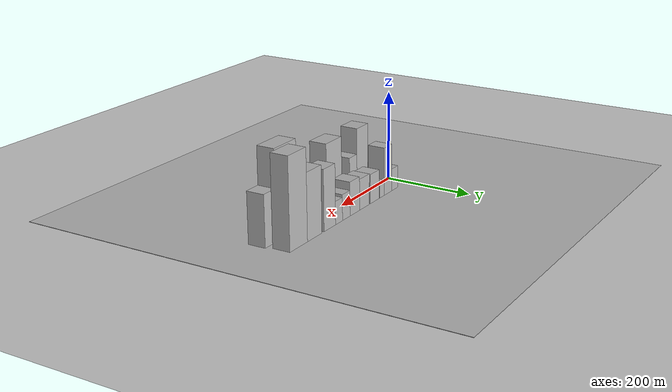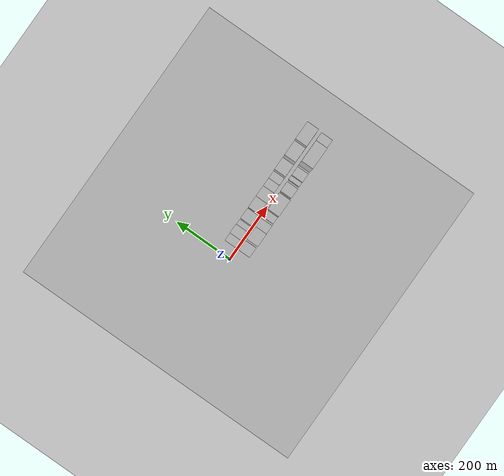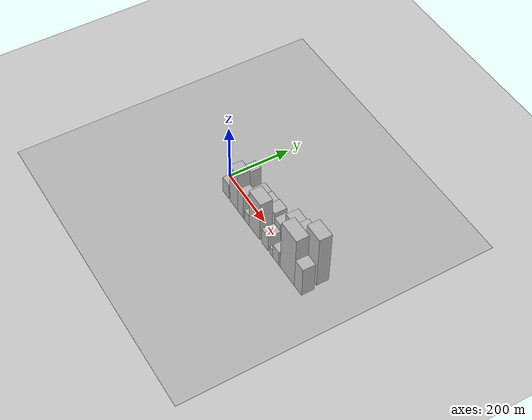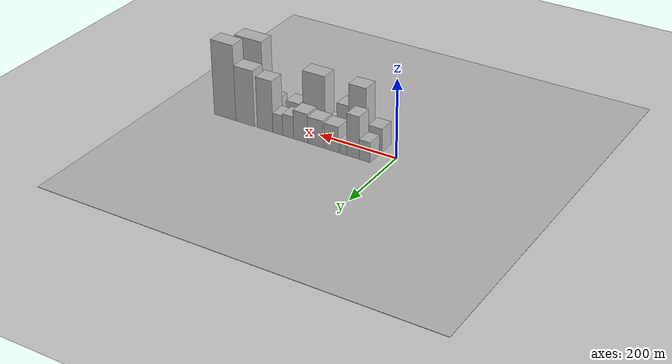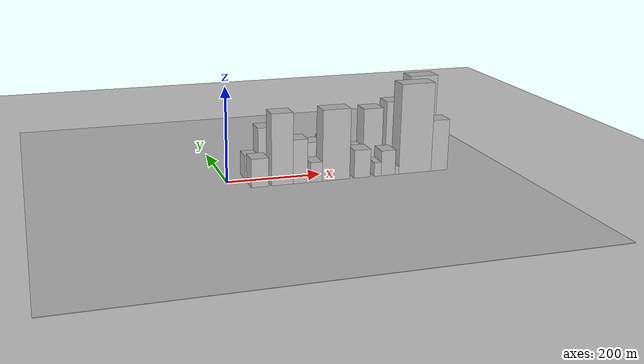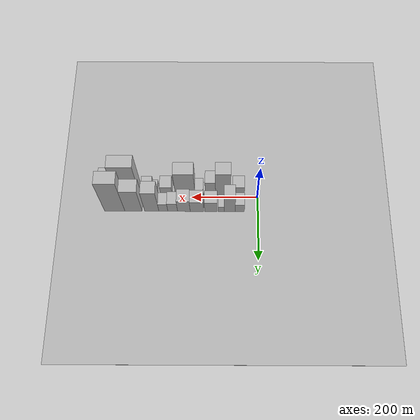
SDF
<?xml version="1.0" encoding="utf-8"?>

<sdf version="1.6">

   <world name="default">

      <gui fullscreen="0">

         <camera name="user_camera">

            <pose>-15 0 4.57585 0 0 0</pose>

            <view_controller>orbit</view_controller>

         </camera>

      </gui>

      <scene>

         <sky>

           <clouds>

             <speed>12</speed>

           </clouds>

         </sky>

         <ambient>0.4 0.4 0.4 1</ambient>

         <background>0.7 0.7 0.7 1</background>

         <shadows>1</shadows>

      </scene>

      <gravity>0 0 -9.8066</gravity>

      <magnetic_field>6e-06 2.3e-05 -4.2e-05</magnetic_field>

      <physics default="0" name="default_physics" type="ode">

         <ode>

            <solver>

               <type>quick</type>

               <iters>10</iters>

               <sor>1.0</sor>

               <use_dynamic_moi_rescaling>0</use_dynamic_moi_rescaling>

            </solver>

            <constraints>

               <cfm>0</cfm>

               <erp>0.2</erp>

               <contact_max_correcting_vel>100</contact_max_correcting_vel>

               <contact_surface_layer>0.001</contact_surface_layer>

            </constraints>

         </ode>

         <max_step_size>0.004</max_step_size>

         <real_time_factor>1</real_time_factor>

         <real_time_update_rate>250</real_time_update_rate>

      </physics>

      <light name="sun" type="directional">

         <cast_shadows>1</cast_shadows>

         <pose>0 0 10 0 0 0</pose>

         <diffuse>0.8 0.8 0.8 1</diffuse>

         <specular>0.2 0.2 0.2 1</specular>

         <attenuation>

            <range>1000</range>

            <constant>0.9</constant>

            <linear>0.01</linear>

            <quadratic>0.001</quadratic>

         </attenuation>

         <direction>-0.5 0.1 -0.9</direction>

      </light>

      <include>

         <name>ground_plane_1</name>

         <uri>model://HANNAS_ground_plane</uri>

         <pose>0 0 0  0 0 0</pose>

      </include>

      <include>

         <name>ground_plane_2</name>

         <uri>model://HANNAS_ground_plane</uri>

         <pose>100 0 0  0 0 0</pose>

      </include>

      <model name="building_1">

         <static>1</static>

         <pose frame="">53.9610 26.0000 0 0.000000 0.000000 1.570796</pose>

         <link name="link">

            <pose frame="">0 0 25.50 0 0 0</pose>

            <collision name="collision">

               <geometry>

                  <box>

                     <size>40.0000 27.9219 51.0000</size>

                  </box>

               </geometry>

               <max_contacts>10</max_contacts>

               <surface>

                  <contact>

                     <ode/>

                  </contact>

                  <bounce/>

                  <friction>

                     <torsional>

                        <ode/>

                     </torsional>

                     <ode/>

                  </friction>

               </surface>

            </collision>

            <visual name="visual">

               <cast_shadows>0</cast_shadows>

               <geometry>

                  <box>

                     <size>40.0000 27.9219 51.0000</size>

                  </box>

               </geometry>

               <material>

                  <script>

                     <uri>model://HANNAS_wall/materials/scripts</uri>

                     <uri>model://HANNAS_wall/materials/textures</uri>

                     <name>vrc/HANNAS_wall</name>

                  </script>

               </material>

            </visual>

            <self_collide>0</self_collide>

            <enable_wind>0</enable_wind>

            <kinematic>0</kinematic>

         </link>

      </model>

      <model name="building_2">

         <static>1</static>

         <pose frame="">84.1409 26.0000 0 0.000000 0.000000 1.570796</pose>

         <link name="link">

            <pose frame="">0 0 54.00 0 0 0</pose>

            <collision name="collision">

               <geometry>

                  <box>

                     <size>40.0000 32.4379 108.0000</size>

                  </box>

               </geometry>

               <max_contacts>10</max_contacts>

               <surface>

                  <contact>

                     <ode/>

                  </contact>

                  <bounce/>

                  <friction>

                     <torsional>

                        <ode/>

                     </torsional>

                     <ode/>

                  </friction>

               </surface>

            </collision>

            <visual name="visual">

               <cast_shadows>0</cast_shadows>

               <geometry>

                  <box>

                     <size>40.0000 32.4379 108.0000</size>

                  </box>

               </geometry>

               <material>

                  <script>

                     <uri>model://HANNAS_wall/materials/scripts</uri>

                     <uri>model://HANNAS_wall/materials/textures</uri>

                     <name>vrc/HANNAS_wall</name>

                  </script>

               </material>

            </visual>

            <self_collide>0</self_collide>

            <enable_wind>0</enable_wind>

            <kinematic>0</kinematic>

         </link>

      </model>

      <model name="building_3">

         <static>1</static>

         <pose frame="">109.6904 26.0000 0 0.000000 0.000000 1.570796</pose>

         <link name="link">

            <pose frame="">0 0 18.00 0 0 0</pose>

            <collision name="collision">

               <geometry>

                  <box>

                     <size>40.0000 18.6612 36.0000</size>

                  </box>

               </geometry>

               <max_contacts>10</max_contacts>

               <surface>

                  <contact>

                     <ode/>

                  </contact>

                  <bounce/>

                  <friction>

                     <torsional>

                        <ode/>

                     </torsional>

                     <ode/>

                  </friction>

               </surface>

            </collision>

            <visual name="visual">

               <cast_shadows>0</cast_shadows>

               <geometry>

                  <box>

                     <size>40.0000 18.6612 36.0000</size>

                  </box>

               </geometry>

               <material>

                  <script>

                     <uri>model://HANNAS_wall/materials/scripts</uri>

                     <uri>model://HANNAS_wall/materials/textures</uri>

                     <name>vrc/HANNAS_wall</name>

                  </script>

               </material>

            </visual>

            <self_collide>0</self_collide>

            <enable_wind>0</enable_wind>

            <kinematic>0</kinematic>

         </link>

      </model>

      <model name="building_4">

         <static>1</static>

         <pose frame="">140.9340 26.0000 0 0.000000 0.000000 1.570796</pose>

         <link name="link">

            <pose frame="">0 0 33.00 0 0 0</pose>

            <collision name="collision">

               <geometry>

                  <box>

                     <size>40.0000 37.8259 66.0000</size>

                  </box>

               </geometry>

               <max_contacts>10</max_contacts>

               <surface>

                  <contact>

                     <ode/>

                  </contact>

                  <bounce/>

                  <friction>

                     <torsional>

                        <ode/>

                     </torsional>

                     <ode/>

                  </friction>

               </surface>

            </collision>

            <visual name="visual">

               <cast_shadows>0</cast_shadows>

               <geometry>

                  <box>

                     <size>40.0000 37.8259 66.0000</size>

                  </box>

               </geometry>

               <material>

                  <script>

                     <uri>model://HANNAS_wall/materials/scripts</uri>

                     <uri>model://HANNAS_wall/materials/textures</uri>

                     <name>vrc/HANNAS_wall</name>

                  </script>

               </material>

            </visual>

            <self_collide>0</self_collide>

            <enable_wind>0</enable_wind>

            <kinematic>0</kinematic>

         </link>

      </model>

      <model name="building_5">

         <static>1</static>

         <pose frame="">183.2874 26.0000 0 0.000000 0.000000 1.570796</pose>

         <link name="link">

            <pose frame="">0 0 34.50 0 0 0</pose>

            <collision name="collision">

               <geometry>

                  <box>

                     <size>40.0000 40.8809 69.0000</size>

                  </box>

               </geometry>

               <max_contacts>10</max_contacts>

               <surface>

                  <contact>

                     <ode/>

                  </contact>

                  <bounce/>

                  <friction>

                     <torsional>

                        <ode/>

                     </torsional>

                     <ode/>

                  </friction>

               </surface>

            </collision>

            <visual name="visual">

               <cast_shadows>0</cast_shadows>

               <geometry>

                  <box>

                     <size>40.0000 40.8809 69.0000</size>

                  </box>

               </geometry>

               <material>

                  <script>

                     <uri>model://HANNAS_wall/materials/scripts</uri>

                     <uri>model://HANNAS_wall/materials/textures</uri>

                     <name>vrc/HANNAS_wall</name>

                  </script>

               </material>

            </visual>

            <self_collide>0</self_collide>

            <enable_wind>0</enable_wind>

            <kinematic>0</kinematic>

         </link>

      </model>

      <model name="building_6">

         <static>1</static>

         <pose frame="">222.8308 26.0000 0 0.000000 0.000000 1.570796</pose>

         <link name="link">

            <pose frame="">0 0 37.50 0 0 0</pose>

            <collision name="collision">

               <geometry>

                  <box>

                     <size>40.0000 38.2059 75.0000</size>

                  </box>

               </geometry>

               <max_contacts>10</max_contacts>

               <surface>

                  <contact>

                     <ode/>

                  </contact>

                  <bounce/>

                  <friction>

                     <torsional>

                        <ode/>

                     </torsional>

                     <ode/>

                  </friction>

               </surface>

            </collision>

            <visual name="visual">

               <cast_shadows>0</cast_shadows>

               <geometry>

                  <box>

                     <size>40.0000 38.2059 75.0000</size>

                  </box>

               </geometry>

               <material>

                  <script>

                     <uri>model://HANNAS_wall/materials/scripts</uri>

                     <uri>model://HANNAS_wall/materials/textures</uri>

                     <name>vrc/HANNAS_wall</name>

                  </script>

               </material>

            </visual>

            <self_collide>0</self_collide>

            <enable_wind>0</enable_wind>

            <kinematic>0</kinematic>

         </link>

      </model>

      <model name="building_7">

         <static>1</static>

         <pose frame="">256.6261 26.0000 0 0.000000 0.000000 1.570796</pose>

         <link name="link">

            <pose frame="">0 0 28.50 0 0 0</pose>

            <collision name="collision">

               <geometry>

                  <box>

                     <size>40.0000 29.3845 57.0000</size>

                  </box>

               </geometry>

               <max_contacts>10</max_contacts>

               <surface>

                  <contact>

                     <ode/>

                  </contact>

                  <bounce/>

                  <friction>

                     <torsional>

                        <ode/>

                     </torsional>

                     <ode/>

                  </friction>

               </surface>

            </collision>

            <visual name="visual">

               <cast_shadows>0</cast_shadows>

               <geometry>

                  <box>

                     <size>40.0000 29.3845 57.0000</size>

                  </box>

               </geometry>

               <material>

                  <script>

                     <uri>model://HANNAS_wall/materials/scripts</uri>

                     <uri>model://HANNAS_wall/materials/textures</uri>

                     <name>vrc/HANNAS_wall</name>

                  </script>

               </material>

            </visual>

            <self_collide>0</self_collide>

            <enable_wind>0</enable_wind>

            <kinematic>0</kinematic>

         </link>

      </model>

      <model name="building_8">

         <static>1</static>

         <pose frame="">284.8140 26.0000 0 0.000000 0.000000 1.570796</pose>

         <link name="link">

            <pose frame="">0 0 25.50 0 0 0</pose>

            <collision name="collision">

               <geometry>

                  <box>

                     <size>40.0000 26.9914 51.0000</size>

                  </box>

               </geometry>

               <max_contacts>10</max_contacts>

               <surface>

                  <contact>

                     <ode/>

                  </contact>

                  <bounce/>

                  <friction>

                     <torsional>

                        <ode/>

                     </torsional>

                     <ode/>

                  </friction>

               </surface>

            </collision>

            <visual name="visual">

               <cast_shadows>0</cast_shadows>

               <geometry>

                  <box>

                     <size>40.0000 26.9914 51.0000</size>

                  </box>

               </geometry>

               <material>

                  <script>

                     <uri>model://HANNAS_wall/materials/scripts</uri>

                     <uri>model://HANNAS_wall/materials/textures</uri>

                     <name>vrc/HANNAS_wall</name>

                  </script>

               </material>

            </visual>

            <self_collide>0</self_collide>

            <enable_wind>0</enable_wind>

            <kinematic>0</kinematic>

         </link>

      </model>

      <model name="building_9">

         <static>1</static>

         <pose frame="">319.8111 26.0000 0 0.000000 0.000000 1.570796</pose>

         <link name="link">

            <pose frame="">0 0 66.00 0 0 0</pose>

            <collision name="collision">

               <geometry>

                  <box>

                     <size>40.0000 43.0029 132.0000</size>

                  </box>

               </geometry>

               <max_contacts>10</max_contacts>

               <surface>

                  <contact>

                     <ode/>

                  </contact>

                  <bounce/>

                  <friction>

                     <torsional>

                        <ode/>

                     </torsional>

                     <ode/>

                  </friction>

               </surface>

            </collision>

            <visual name="visual">

               <cast_shadows>0</cast_shadows>

               <geometry>

                  <box>

                     <size>40.0000 43.0029 132.0000</size>

                  </box>

               </geometry>

               <material>

                  <script>

                     <uri>model://HANNAS_wall/materials/scripts</uri>

                     <uri>model://HANNAS_wall/materials/textures</uri>

                     <name>vrc/HANNAS_wall</name>

                  </script>

               </material>

            </visual>

            <self_collide>0</self_collide>

            <enable_wind>0</enable_wind>

            <kinematic>0</kinematic>

         </link>

      </model>

      <model name="building_10">

         <static>1</static>

         <pose frame="">375.3507 26.0000 0 0.000000 0.000000 1.570796</pose>

         <link name="link">

            <pose frame="">0 0 72.00 0 0 0</pose>

            <collision name="collision">

               <geometry>

                  <box>

                     <size>40.0000 52.0764 144.0000</size>

                  </box>

               </geometry>

               <max_contacts>10</max_contacts>

               <surface>

                  <contact>

                     <ode/>

                  </contact>

                  <bounce/>

                  <friction>

                     <torsional>

                        <ode/>

                     </torsional>

                     <ode/>

                  </friction>

               </surface>

            </collision>

            <visual name="visual">

               <cast_shadows>0</cast_shadows>

               <geometry>

                  <box>

                     <size>40.0000 52.0764 144.0000</size>

                  </box>

               </geometry>

               <material>

                  <script>

                     <uri>model://HANNAS_wall/materials/scripts</uri>

                     <uri>model://HANNAS_wall/materials/textures</uri>

                     <name>vrc/HANNAS_wall</name>

                  </script>

               </material>

            </visual>

            <self_collide>0</self_collide>

            <enable_wind>0</enable_wind>

            <kinematic>0</kinematic>

         </link>

      </model>

      <model name="building_11">

         <static>1</static>

         <pose frame="">432.0049 26.0000 0 0.000000 0.000000 1.570796</pose>

         <link name="link">

            <pose frame="">0 0 97.50 0 0 0</pose>

            <collision name="collision">

               <geometry>

                  <box>

                     <size>40.0000 61.2319 195.0000</size>

                  </box>

               </geometry>

               <max_contacts>10</max_contacts>

               <surface>

                  <contact>

                     <ode/>

                  </contact>

                  <bounce/>

                  <friction>

                     <torsional>

                        <ode/>

                     </torsional>

                     <ode/>

                  </friction>

               </surface>

            </collision>

            <visual name="visual">

               <cast_shadows>0</cast_shadows>

               <geometry>

                  <box>

                     <size>40.0000 61.2319 195.0000</size>

                  </box>

               </geometry>

               <material>

                  <script>

                     <uri>model://HANNAS_wall/materials/scripts</uri>

                     <uri>model://HANNAS_wall/materials/textures</uri>

                     <name>vrc/HANNAS_wall</name>

                  </script>

               </material>

            </visual>

            <self_collide>0</self_collide>

            <enable_wind>0</enable_wind>

            <kinematic>0</kinematic>

         </link>

      </model>

      <model name="building_12">

         <static>1</static>

         <pose frame="">57.8651 -26.0000 0 0.000000 0.000000 1.570796</pose>

         <link name="link">

            <pose frame="">0 0 30.00 0 0 0</pose>

            <collision name="collision">

               <geometry>

                  <box>

                     <size>40.0000 35.7302 60.0000</size>

                  </box>

               </geometry>

               <max_contacts>10</max_contacts>

               <surface>

                  <contact>

                     <ode/>

                  </contact>

                  <bounce/>

                  <friction>

                     <torsional>

                        <ode/>

                     </torsional>

                     <ode/>

                  </friction>

               </surface>

            </collision>

            <visual name="visual">

               <cast_shadows>0</cast_shadows>

               <geometry>

                  <box>

                     <size>40.0000 35.7302 60.0000</size>

                  </box>

               </geometry>

               <material>

                  <script>

                     <uri>model://HANNAS_wall/materials/scripts</uri>

                     <uri>model://HANNAS_wall/materials/textures</uri>

                     <name>vrc/HANNAS_wall</name>

                  </script>

               </material>

            </visual>

            <self_collide>0</self_collide>

            <enable_wind>0</enable_wind>

            <kinematic>0</kinematic>

         </link>

      </model>

      <model name="building_13">

         <static>1</static>

         <pose frame="">104.4608 -26.0000 0 0.000000 0.000000 1.570796</pose>

         <link name="link">

            <pose frame="">0 0 75.00 0 0 0</pose>

            <collision name="collision">

               <geometry>

                  <box>

                     <size>40.0000 45.4612 150.0000</size>

                  </box>

               </geometry>

               <max_contacts>10</max_contacts>

               <surface>

                  <contact>

                     <ode/>

                  </contact>

                  <bounce/>

                  <friction>

                     <torsional>

                        <ode/>

                     </torsional>

                     <ode/>

                  </friction>

               </surface>

            </collision>

            <visual name="visual">

               <cast_shadows>0</cast_shadows>

               <geometry>

                  <box>

                     <size>40.0000 45.4612 150.0000</size>

                  </box>

               </geometry>

               <material>

                  <script>

                     <uri>model://HANNAS_wall/materials/scripts</uri>

                     <uri>model://HANNAS_wall/materials/textures</uri>

                     <name>vrc/HANNAS_wall</name>

                  </script>

               </material>

            </visual>

            <self_collide>0</self_collide>

            <enable_wind>0</enable_wind>

            <kinematic>0</kinematic>

         </link>

      </model>

      <model name="building_14">

         <static>1</static>

         <pose frame="">142.5505 -26.0000 0 0.000000 0.000000 1.570796</pose>

         <link name="link">

            <pose frame="">0 0 46.50 0 0 0</pose>

            <collision name="collision">

               <geometry>

                  <box>

                     <size>40.0000 30.7182 93.0000</size>

                  </box>

               </geometry>

               <max_contacts>10</max_contacts>

               <surface>

                  <contact>

                     <ode/>

                  </contact>

                  <bounce/>

                  <friction>

                     <torsional>

                        <ode/>

                     </torsional>

                     <ode/>

                  </friction>

               </surface>

            </collision>

            <visual name="visual">

               <cast_shadows>0</cast_shadows>

               <geometry>

                  <box>

                     <size>40.0000 30.7182 93.0000</size>

                  </box>

               </geometry>

               <material>

                  <script>

                     <uri>model://HANNAS_wall/materials/scripts</uri>

                     <uri>model://HANNAS_wall/materials/textures</uri>

                     <name>vrc/HANNAS_wall</name>

                  </script>

               </material>

            </visual>

            <self_collide>0</self_collide>

            <enable_wind>0</enable_wind>

            <kinematic>0</kinematic>

         </link>

      </model>

      <model name="building_15">

         <static>1</static>

         <pose frame="">161.4227 -26.0000 0 0.000000 0.000000 1.570796</pose>

         <link name="link">

            <pose frame="">0 0 7.50 0 0 0</pose>

            <collision name="collision">

               <geometry>

                  <box>

                     <size>40.0000 7.0263 15.0000</size>

                  </box>

               </geometry>

               <max_contacts>10</max_contacts>

               <surface>

                  <contact>

                     <ode/>

                  </contact>

                  <bounce/>

                  <friction>

                     <torsional>

                        <ode/>

                     </torsional>

                     <ode/>

                  </friction>

               </surface>

            </collision>

            <visual name="visual">

               <cast_shadows>0</cast_shadows>

               <geometry>

                  <box>

                     <size>40.0000 7.0263 15.0000</size>

                  </box>

               </geometry>

               <material>

                  <script>

                     <uri>model://HANNAS_wall/materials/scripts</uri>

                     <uri>model://HANNAS_wall/materials/textures</uri>

                     <name>vrc/HANNAS_wall</name>

                  </script>

               </material>

            </visual>

            <self_collide>0</self_collide>

            <enable_wind>0</enable_wind>

            <kinematic>0</kinematic>

         </link>

      </model>

      <model name="building_16">

         <static>1</static>

         <pose frame="">177.3652 -26.0000 0 0.000000 0.000000 1.570796</pose>

         <link name="link">

            <pose frame="">0 0 21.00 0 0 0</pose>

            <collision name="collision">

               <geometry>

                  <box>

                     <size>40.0000 24.8586 42.0000</size>

                  </box>

               </geometry>

               <max_contacts>10</max_contacts>

               <surface>

                  <contact>

                     <ode/>

                  </contact>

                  <bounce/>

                  <friction>

                     <torsional>

                        <ode/>

                     </torsional>

                     <ode/>

                  </friction>

               </surface>

            </collision>

            <visual name="visual">

               <cast_shadows>0</cast_shadows>

               <geometry>

                  <box>

                     <size>40.0000 24.8586 42.0000</size>

                  </box>

               </geometry>

               <material>

                  <script>

                     <uri>model://HANNAS_wall/materials/scripts</uri>

                     <uri>model://HANNAS_wall/materials/textures</uri>

                     <name>vrc/HANNAS_wall</name>

                  </script>

               </material>

            </visual>

            <self_collide>0</self_collide>

            <enable_wind>0</enable_wind>

            <kinematic>0</kinematic>

         </link>

      </model>

      <model name="building_17">

         <static>1</static>

         <pose frame="">219.5903 -26.0000 0 0.000000 0.000000 1.570796</pose>

         <link name="link">

            <pose frame="">0 0 75.00 0 0 0</pose>

            <collision name="collision">

               <geometry>

                  <box>

                     <size>40.0000 59.5916 150.0000</size>

                  </box>

               </geometry>

               <max_contacts>10</max_contacts>

               <surface>

                  <contact>

                     <ode/>

                  </contact>

                  <bounce/>

                  <friction>

                     <torsional>

                        <ode/>

                     </torsional>

                     <ode/>

                  </friction>

               </surface>

            </collision>

            <visual name="visual">

               <cast_shadows>0</cast_shadows>

               <geometry>

                  <box>

                     <size>40.0000 59.5916 150.0000</size>

                  </box>

               </geometry>

               <material>

                  <script>

                     <uri>model://HANNAS_wall/materials/scripts</uri>

                     <uri>model://HANNAS_wall/materials/textures</uri>

                     <name>vrc/HANNAS_wall</name>

                  </script>

               </material>

            </visual>

            <self_collide>0</self_collide>

            <enable_wind>0</enable_wind>

            <kinematic>0</kinematic>

         </link>

      </model>

      <model name="building_18">

         <static>1</static>

         <pose frame="">277.1664 -26.0000 0 0.000000 0.000000 1.570796</pose>

         <link name="link">

            <pose frame="">0 0 30.00 0 0 0</pose>

            <collision name="collision">

               <geometry>

                  <box>

                     <size>40.0000 35.5606 60.0000</size>

                  </box>

               </geometry>

               <max_contacts>10</max_contacts>

               <surface>

                  <contact>

                     <ode/>

                  </contact>

                  <bounce/>

                  <friction>

                     <torsional>

                        <ode/>

                     </torsional>

                     <ode/>

                  </friction>

               </surface>

            </collision>

            <visual name="visual">

               <cast_shadows>0</cast_shadows>

               <geometry>

                  <box>

                     <size>40.0000 35.5606 60.0000</size>

                  </box>

               </geometry>

               <material>

                  <script>

                     <uri>model://HANNAS_wall/materials/scripts</uri>

                     <uri>model://HANNAS_wall/materials/textures</uri>

                     <name>vrc/HANNAS_wall</name>

                  </script>

               </material>

            </visual>

            <self_collide>0</self_collide>

            <enable_wind>0</enable_wind>

            <kinematic>0</kinematic>

         </link>

      </model>

      <model name="building_19">

         <static>1</static>

         <pose frame="">311.5501 -26.0000 0 0.000000 0.000000 1.570796</pose>

         <link name="link">

            <pose frame="">0 0 15.00 0 0 0</pose>

            <collision name="collision">

               <geometry>

                  <box>

                     <size>40.0000 15.2067 30.0000</size>

                  </box>

               </geometry>

               <max_contacts>10</max_contacts>

               <surface>

                  <contact>

                     <ode/>

                  </contact>

                  <bounce/>

                  <friction>

                     <torsional>

                        <ode/>

                     </torsional>

                     <ode/>

                  </friction>

               </surface>

            </collision>

            <visual name="visual">

               <cast_shadows>0</cast_shadows>

               <geometry>

                  <box>

                     <size>40.0000 15.2067 30.0000</size>

                  </box>

               </geometry>

               <material>

                  <script>

                     <uri>model://HANNAS_wall/materials/scripts</uri>

                     <uri>model://HANNAS_wall/materials/textures</uri>

                     <name>vrc/HANNAS_wall</name>

                  </script>

               </material>

            </visual>

            <self_collide>0</self_collide>

            <enable_wind>0</enable_wind>

            <kinematic>0</kinematic>

         </link>

      </model>

      <model name="building_20">

         <static>1</static>

         <pose frame="">334.8458 -26.0000 0 0.000000 0.000000 1.570796</pose>

         <link name="link">

            <pose frame="">0 0 27.00 0 0 0</pose>

            <collision name="collision">

               <geometry>

                  <box>

                     <size>40.0000 31.3847 54.0000</size>

                  </box>

               </geometry>

               <max_contacts>10</max_contacts>

               <surface>

                  <contact>

                     <ode/>

                  </contact>

                  <bounce/>

                  <friction>

                     <torsional>

                        <ode/>

                     </torsional>

                     <ode/>

                  </friction>

               </surface>

            </collision>

            <visual name="visual">

               <cast_shadows>0</cast_shadows>

               <geometry>

                  <box>

                     <size>40.0000 31.3847 54.0000</size>

                  </box>

               </geometry>

               <material>

                  <script>

                     <uri>model://HANNAS_wall/materials/scripts</uri>

                     <uri>model://HANNAS_wall/materials/textures</uri>

                     <name>vrc/HANNAS_wall</name>

                  </script>

               </material>

            </visual>

            <self_collide>0</self_collide>

            <enable_wind>0</enable_wind>

            <kinematic>0</kinematic>

         </link>

      </model>

      <model name="building_21">

         <static>1</static>

         <pose frame="">354.7748 -26.0000 0 0.000000 0.000000 1.570796</pose>

         <link name="link">

            <pose frame="">0 0 9.00 0 0 0</pose>

            <collision name="collision">

               <geometry>

                  <box>

                     <size>40.0000 8.4734 18.0000</size>

                  </box>

               </geometry>

               <max_contacts>10</max_contacts>

               <surface>

                  <contact>

                     <ode/>

                  </contact>

                  <bounce/>

                  <friction>

                     <torsional>

                        <ode/>

                     </torsional>

                     <ode/>

                  </friction>

               </surface>

            </collision>

            <visual name="visual">

               <cast_shadows>0</cast_shadows>

               <geometry>

                  <box>

                     <size>40.0000 8.4734 18.0000</size>

                  </box>

               </geometry>

               <material>

                  <script>

                     <uri>model://HANNAS_wall/materials/scripts</uri>

                     <uri>model://HANNAS_wall/materials/textures</uri>

                     <name>vrc/HANNAS_wall</name>

                  </script>

               </material>

            </visual>

            <self_collide>0</self_collide>

            <enable_wind>0</enable_wind>

            <kinematic>0</kinematic>

         </link>

      </model>

      <model name="building_22">

         <static>1</static>

         <pose frame="">395.7836 -26.0000 0 0.000000 0.000000 1.570796</pose>

         <link name="link">

            <pose frame="">0 0 96.00 0 0 0</pose>

            <collision name="collision">

               <geometry>

                  <box>

                     <size>40.0000 73.5443 192.0000</size>

                  </box>

               </geometry>

               <max_contacts>10</max_contacts>

               <surface>

                  <contact>

                     <ode/>

                  </contact>

                  <bounce/>

                  <friction>

                     <torsional>

                        <ode/>

                     </torsional>

                     <ode/>

                  </friction>

               </surface>

            </collision>

            <visual name="visual">

               <cast_shadows>0</cast_shadows>

               <geometry>

                  <box>

                     <size>40.0000 73.5443 192.0000</size>

                  </box>

               </geometry>

               <material>

                  <script>

                     <uri>model://HANNAS_wall/materials/scripts</uri>

                     <uri>model://HANNAS_wall/materials/textures</uri>

                     <name>vrc/HANNAS_wall</name>

                  </script>

               </material>

            </visual>

            <self_collide>0</self_collide>

            <enable_wind>0</enable_wind>

            <kinematic>0</kinematic>

         </link>

      </model>

      <model name="building_23">

         <static>1</static>

         <pose frame="">451.2995 -26.0000 0 0.000000 0.000000 1.570796</pose>

         <link name="link">

            <pose frame="">0 0 55.50 0 0 0</pose>

            <collision name="collision">

               <geometry>

                  <box>

                     <size>40.0000 37.4874 111.0000</size>

                  </box>

               </geometry>

               <max_contacts>10</max_contacts>

               <surface>

                  <contact>

                     <ode/>

                  </contact>

                  <bounce/>

                  <friction>

                     <torsional>

                        <ode/>

                     </torsional>

                     <ode/>

                  </friction>

               </surface>

            </collision>

            <visual name="visual">

               <cast_shadows>0</cast_shadows>

               <geometry>

                  <box>

                     <size>40.0000 37.4874 111.0000</size>

                  </box>

               </geometry>

               <material>

                  <script>

                     <uri>model://HANNAS_wall/materials/scripts</uri>

                     <uri>model://HANNAS_wall/materials/textures</uri>

                     <name>vrc/HANNAS_wall</name>

                  </script>

               </material>

            </visual>

            <self_collide>0</self_collide>

            <enable_wind>0</enable_wind>

            <kinematic>0</kinematic>

         </link>

      </model>

   </world>

</sdf>

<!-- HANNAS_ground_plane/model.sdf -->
<sdf version="1.4">
<model name="HANNAS_ground_plane">
  <static>true</static>
    <link name="link">
      <collision name="collision">
        <geometry>
          <plane>
            <normal>0 0 1</normal>
            <size>1000 1000</size>
          </plane>
        </geometry>
        <surface>
          <friction>
            <ode>
              <mu>100</mu>
              <mu2>50</mu2>
            </ode>
          </friction>
        </surface>
      </collision>
      <visual name="visual">
        <cast_shadows>false</cast_shadows>
        <geometry>
          <plane>
            <normal>0 0 1</normal>
            <size>1000 1000</size>
          </plane>
        </geometry>
        <material>
          <script>
            <uri>model://HANNAS_ground_plane/materials/scripts/HANNAS_ground_plane.material</uri>
	    <uri>model://HANNAS_ground_plane/materials/textures</uri>
            <name>HANNASGroundPlane/Image</name>
          </script>
        </material>
      </visual>
    </link>
  </model>
</sdf>
